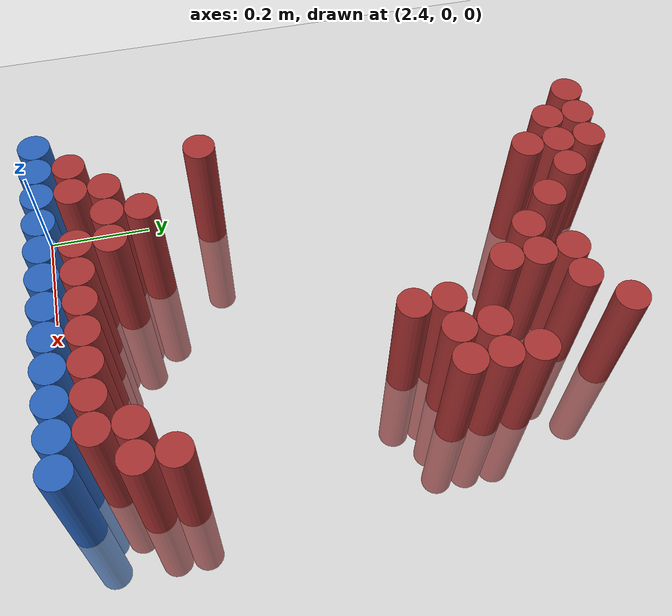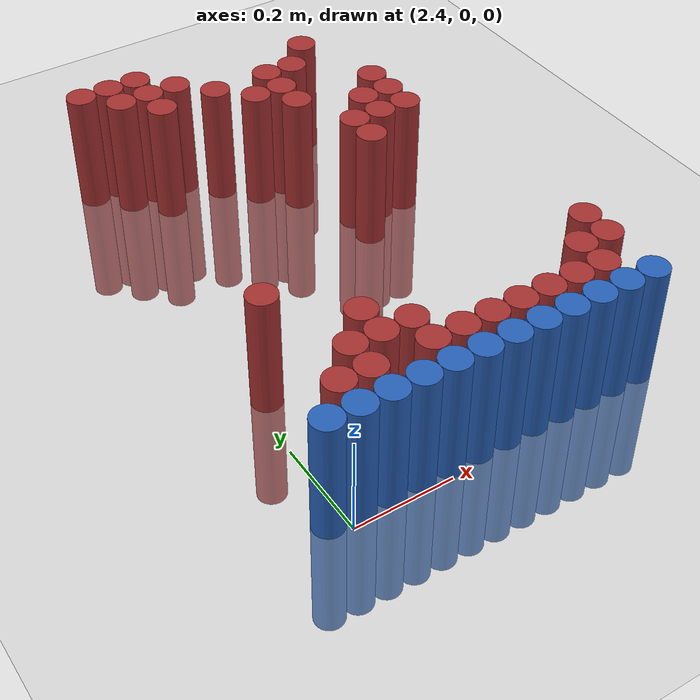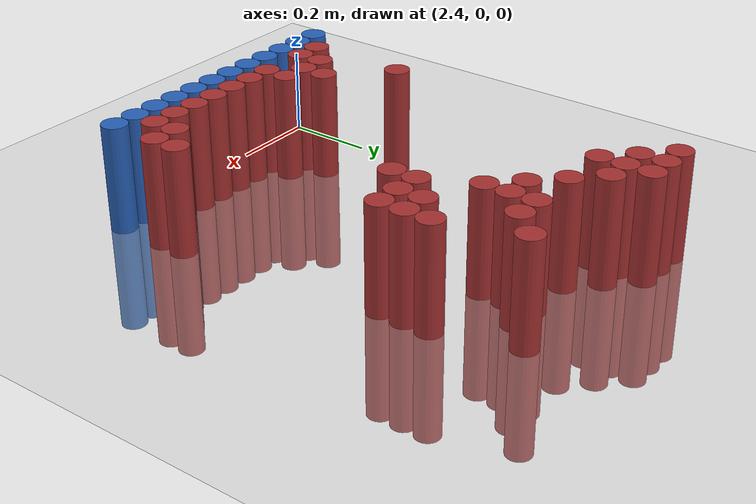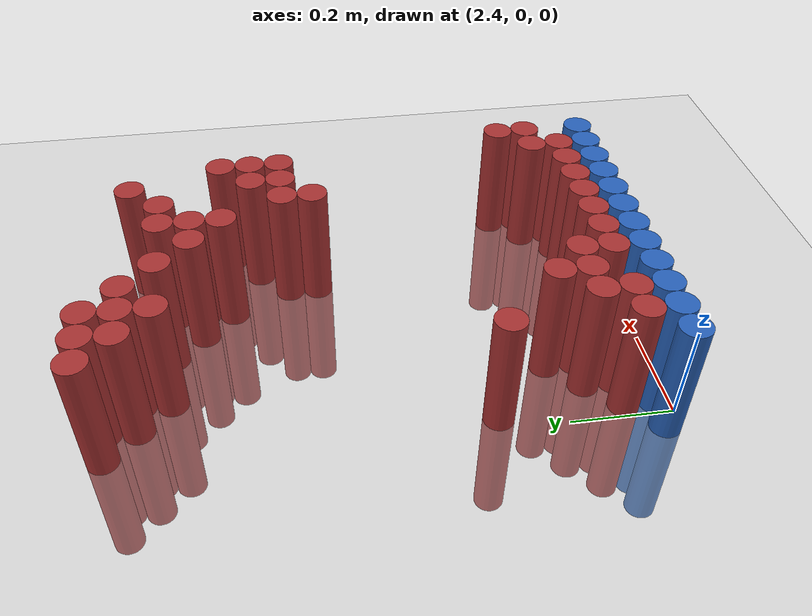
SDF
<sdf version="1.6">
 <world name="default">
  <model name="ground_plane">
   <static>1</static>
   <link name="link">
    <collision name="collision">
     <geometry><plane><normal>0 0 1</normal><size>100 100</size></plane></geometry>
     <surface><friction><ode><mu>100</mu><mu2>50</mu2></ode></friction></surface>
    </collision>
    <visual name="visual">
     <cast_shadows>0</cast_shadows>
     <geometry><plane><normal>0 0 1</normal><size>100 100</size></plane></geometry>
     <material>
      <script><uri>file://media/materials/scripts/gazebo.material</uri><name>Gazebo/Grey</name></script>
     </material>
    </visual>
   </link>
  </model>
  <model name="unit_cylinder_221">
   <static>1</static>
   <pose>2.430000 1.050000 0.000000 0.000000 0.000000 0.000000</pose>
   <link name="link">
    <inertial>
     <mass>1</mass>
     <inertia><ixx>0.145833</ixx><ixy>0</ixy><ixz>0</ixz><iyy>0.145833</iyy><iyz>0</iyz><izz>0.125</izz></inertia>
    </inertial>
    <collision name="collision">
     <geometry><cylinder><radius>0.030000</radius><length>0.5</length></cylinder></geometry>
    </collision>
    <visual name="visual">
     <geometry><cylinder><radius>0.030000</radius><length>0.5</length></cylinder></geometry>
     <material>
      <ambient>0.648000 0.192000 0.192000 1</ambient>
      <diffuse>0.648000 0.192000 0.192000 1</diffuse>
     </material>
     <material>
      <script><name>Gazebo/Grey</name><uri>file://media/materials/scripts/gazebo.material</uri></script>
     </material>
    </visual>
   </link>
  </model>
  <model name="unit_cylinder_222">
   <static>1</static>
   <pose>2.490000 1.050000 0.000000 0.000000 0.000000 0.000000</pose>
   <link name="link">
    <inertial>
     <mass>1</mass>
     <inertia><ixx>0.145833</ixx><ixy>0</ixy><ixz>0</ixz><iyy>0.145833</iyy><iyz>0</iyz><izz>0.125</izz></inertia>
    </inertial>
    <collision name="collision">
     <geometry><cylinder><radius>0.030000</radius><length>0.5</length></cylinder></geometry>
    </collision>
    <visual name="visual">
     <geometry><cylinder><radius>0.030000</radius><length>0.5</length></cylinder></geometry>
     <material>
      <ambient>0.648000 0.192000 0.192000 1</ambient>
      <diffuse>0.648000 0.192000 0.192000 1</diffuse>
     </material>
     <material>
      <script><name>Gazebo/Grey</name><uri>file://media/materials/scripts/gazebo.material</uri></script>
     </material>
    </visual>
   </link>
  </model>
  <model name="unit_cylinder_223">
   <static>1</static>
   <pose>2.550000 1.050000 0.000000 0.000000 0.000000 0.000000</pose>
   <link name="link">
    <inertial>
     <mass>1</mass>
     <inertia><ixx>0.145833</ixx><ixy>0</ixy><ixz>0</ixz><iyy>0.145833</iyy><iyz>0</iyz><izz>0.125</izz></inertia>
    </inertial>
    <collision name="collision">
     <geometry><cylinder><radius>0.030000</radius><length>0.5</length></cylinder></geometry>
    </collision>
    <visual name="visual">
     <geometry><cylinder><radius>0.030000</radius><length>0.5</length></cylinder></geometry>
     <material>
      <ambient>0.648000 0.192000 0.192000 1</ambient>
      <diffuse>0.648000 0.192000 0.192000 1</diffuse>
     </material>
     <material>
      <script><name>Gazebo/Grey</name><uri>file://media/materials/scripts/gazebo.material</uri></script>
     </material>
    </visual>
   </link>
  </model>
  <model name="unit_cylinder_229">
   <static>1</static>
   <pose>2.490000 0.990000 0.000000 0.000000 0.000000 0.000000</pose>
   <link name="link">
    <inertial>
     <mass>1</mass>
     <inertia><ixx>0.145833</ixx><ixy>0</ixy><ixz>0</ixz><iyy>0.145833</iyy><iyz>0</iyz><izz>0.125</izz></inertia>
    </inertial>
    <collision name="collision">
     <geometry><cylinder><radius>0.030000</radius><length>0.5</length></cylinder></geometry>
    </collision>
    <visual name="visual">
     <geometry><cylinder><radius>0.030000</radius><length>0.5</length></cylinder></geometry>
     <material>
      <ambient>0.648000 0.192000 0.192000 1</ambient>
      <diffuse>0.648000 0.192000 0.192000 1</diffuse>
     </material>
     <material>
      <script><name>Gazebo/Grey</name><uri>file://media/materials/scripts/gazebo.material</uri></script>
     </material>
    </visual>
   </link>
  </model>
  <model name="unit_cylinder_230">
   <static>1</static>
   <pose>2.550000 0.990000 0.000000 0.000000 0.000000 0.000000</pose>
   <link name="link">
    <inertial>
     <mass>1</mass>
     <inertia><ixx>0.145833</ixx><ixy>0</ixy><ixz>0</ixz><iyy>0.145833</iyy><iyz>0</iyz><izz>0.125</izz></inertia>
    </inertial>
    <collision name="collision">
     <geometry><cylinder><radius>0.030000</radius><length>0.5</length></cylinder></geometry>
    </collision>
    <visual name="visual">
     <geometry><cylinder><radius>0.030000</radius><length>0.5</length></cylinder></geometry>
     <material>
      <ambient>0.648000 0.192000 0.192000 1</ambient>
      <diffuse>0.648000 0.192000 0.192000 1</diffuse>
     </material>
     <material>
      <script><name>Gazebo/Grey</name><uri>file://media/materials/scripts/gazebo.material</uri></script>
     </material>
    </visual>
   </link>
  </model>
  <model name="unit_cylinder_231">
   <static>1</static>
   <pose>2.610000 0.990000 0.000000 0.000000 0.000000 0.000000</pose>
   <link name="link">
    <inertial>
     <mass>1</mass>
     <inertia><ixx>0.145833</ixx><ixy>0</ixy><ixz>0</ixz><iyy>0.145833</iyy><iyz>0</iyz><izz>0.125</izz></inertia>
    </inertial>
    <collision name="collision">
     <geometry><cylinder><radius>0.030000</radius><length>0.5</length></cylinder></geometry>
    </collision>
    <visual name="visual">
     <geometry><cylinder><radius>0.030000</radius><length>0.5</length></cylinder></geometry>
     <material>
      <ambient>0.648000 0.192000 0.192000 1</ambient>
      <diffuse>0.648000 0.192000 0.192000 1</diffuse>
     </material>
     <material>
      <script><name>Gazebo/Grey</name><uri>file://media/materials/scripts/gazebo.material</uri></script>
     </material>
    </visual>
   </link>
  </model>
  <model name="unit_cylinder_232">
   <static>1</static>
   <pose>2.910000 0.990000 0.000000 0.000000 0.000000 0.000000</pose>
   <link name="link">
    <inertial>
     <mass>1</mass>
     <inertia><ixx>0.145833</ixx><ixy>0</ixy><ixz>0</ixz><iyy>0.145833</iyy><iyz>0</iyz><izz>0.125</izz></inertia>
    </inertial>
    <collision name="collision">
     <geometry><cylinder><radius>0.030000</radius><length>0.5</length></cylinder></geometry>
    </collision>
    <visual name="visual">
     <geometry><cylinder><radius>0.030000</radius><length>0.5</length></cylinder></geometry>
     <material>
      <ambient>0.648000 0.192000 0.192000 1</ambient>
      <diffuse>0.648000 0.192000 0.192000 1</diffuse>
     </material>
     <material>
      <script><name>Gazebo/Grey</name><uri>file://media/materials/scripts/gazebo.material</uri></script>
     </material>
    </visual>
   </link>
  </model>
  <model name="unit_cylinder_239">
   <static>1</static>
   <pose>2.550000 0.930000 0.000000 0.000000 0.000000 0.000000</pose>
   <link name="link">
    <inertial>
     <mass>1</mass>
     <inertia><ixx>0.145833</ixx><ixy>0</ixy><ixz>0</ixz><iyy>0.145833</iyy><iyz>0</iyz><izz>0.125</izz></inertia>
    </inertial>
    <collision name="collision">
     <geometry><cylinder><radius>0.030000</radius><length>0.5</length></cylinder></geometry>
    </collision>
    <visual name="visual">
     <geometry><cylinder><radius>0.030000</radius><length>0.5</length></cylinder></geometry>
     <material>
      <ambient>0.648000 0.192000 0.192000 1</ambient>
      <diffuse>0.648000 0.192000 0.192000 1</diffuse>
     </material>
     <material>
      <script><name>Gazebo/Grey</name><uri>file://media/materials/scripts/gazebo.material</uri></script>
     </material>
    </visual>
   </link>
  </model>
  <model name="unit_cylinder_240">
   <static>1</static>
   <pose>2.670000 0.930000 0.000000 0.000000 0.000000 0.000000</pose>
   <link name="link">
    <inertial>
     <mass>1</mass>
     <inertia><ixx>0.145833</ixx><ixy>0</ixy><ixz>0</ixz><iyy>0.145833</iyy><iyz>0</iyz><izz>0.125</izz></inertia>
    </inertial>
    <collision name="collision">
     <geometry><cylinder><radius>0.030000</radius><length>0.5</length></cylinder></geometry>
    </collision>
    <visual name="visual">
     <geometry><cylinder><radius>0.030000</radius><length>0.5</length></cylinder></geometry>
     <material>
      <ambient>0.648000 0.192000 0.192000 1</ambient>
      <diffuse>0.648000 0.192000 0.192000 1</diffuse>
     </material>
     <material>
      <script><name>Gazebo/Grey</name><uri>file://media/materials/scripts/gazebo.material</uri></script>
     </material>
    </visual>
   </link>
  </model>
  <model name="unit_cylinder_241">
   <static>1</static>
   <pose>2.790000 0.930000 0.000000 0.000000 0.000000 0.000000</pose>
   <link name="link">
    <inertial>
     <mass>1</mass>
     <inertia><ixx>0.145833</ixx><ixy>0</ixy><ixz>0</ixz><iyy>0.145833</iyy><iyz>0</iyz><izz>0.125</izz></inertia>
    </inertial>
    <collision name="collision">
     <geometry><cylinder><radius>0.030000</radius><length>0.5</length></cylinder></geometry>
    </collision>
    <visual name="visual">
     <geometry><cylinder><radius>0.030000</radius><length>0.5</length></cylinder></geometry>
     <material>
      <ambient>0.648000 0.192000 0.192000 1</ambient>
      <diffuse>0.648000 0.192000 0.192000 1</diffuse>
     </material>
     <material>
      <script><name>Gazebo/Grey</name><uri>file://media/materials/scripts/gazebo.material</uri></script>
     </material>
    </visual>
   </link>
  </model>
  <model name="unit_cylinder_242">
   <static>1</static>
   <pose>2.850000 0.930000 0.000000 0.000000 0.000000 0.000000</pose>
   <link name="link">
    <inertial>
     <mass>1</mass>
     <inertia><ixx>0.145833</ixx><ixy>0</ixy><ixz>0</ixz><iyy>0.145833</iyy><iyz>0</iyz><izz>0.125</izz></inertia>
    </inertial>
    <collision name="collision">
     <geometry><cylinder><radius>0.030000</radius><length>0.5</length></cylinder></geometry>
    </collision>
    <visual name="visual">
     <geometry><cylinder><radius>0.030000</radius><length>0.5</length></cylinder></geometry>
     <material>
      <ambient>0.648000 0.192000 0.192000 1</ambient>
      <diffuse>0.648000 0.192000 0.192000 1</diffuse>
     </material>
     <material>
      <script><name>Gazebo/Grey</name><uri>file://media/materials/scripts/gazebo.material</uri></script>
     </material>
    </visual>
   </link>
  </model>
  <model name="unit_cylinder_250">
   <static>1</static>
   <pose>2.730000 0.870000 0.000000 0.000000 0.000000 0.000000</pose>
   <link name="link">
    <inertial>
     <mass>1</mass>
     <inertia><ixx>0.145833</ixx><ixy>0</ixy><ixz>0</ixz><iyy>0.145833</iyy><iyz>0</iyz><izz>0.125</izz></inertia>
    </inertial>
    <collision name="collision">
     <geometry><cylinder><radius>0.030000</radius><length>0.5</length></cylinder></geometry>
    </collision>
    <visual name="visual">
     <geometry><cylinder><radius>0.030000</radius><length>0.5</length></cylinder></geometry>
     <material>
      <ambient>0.648000 0.192000 0.192000 1</ambient>
      <diffuse>0.648000 0.192000 0.192000 1</diffuse>
     </material>
     <material>
      <script><name>Gazebo/Grey</name><uri>file://media/materials/scripts/gazebo.material</uri></script>
     </material>
    </visual>
   </link>
  </model>
  <model name="unit_cylinder_251">
   <static>1</static>
   <pose>2.790000 0.870000 0.000000 0.000000 0.000000 0.000000</pose>
   <link name="link">
    <inertial>
     <mass>1</mass>
     <inertia><ixx>0.145833</ixx><ixy>0</ixy><ixz>0</ixz><iyy>0.145833</iyy><iyz>0</iyz><izz>0.125</izz></inertia>
    </inertial>
    <collision name="collision">
     <geometry><cylinder><radius>0.030000</radius><length>0.5</length></cylinder></geometry>
    </collision>
    <visual name="visual">
     <geometry><cylinder><radius>0.030000</radius><length>0.5</length></cylinder></geometry>
     <material>
      <ambient>0.648000 0.192000 0.192000 1</ambient>
      <diffuse>0.648000 0.192000 0.192000 1</diffuse>
     </material>
     <material>
      <script><name>Gazebo/Grey</name><uri>file://media/materials/scripts/gazebo.material</uri></script>
     </material>
    </visual>
   </link>
  </model>
  <model name="unit_cylinder_255">
   <static>1</static>
   <pose>2.790000 0.810000 0.000000 0.000000 0.000000 0.000000</pose>
   <link name="link">
    <inertial>
     <mass>1</mass>
     <inertia><ixx>0.145833</ixx><ixy>0</ixy><ixz>0</ixz><iyy>0.145833</iyy><iyz>0</iyz><izz>0.125</izz></inertia>
    </inertial>
    <collision name="collision">
     <geometry><cylinder><radius>0.030000</radius><length>0.5</length></cylinder></geometry>
    </collision>
    <visual name="visual">
     <geometry><cylinder><radius>0.030000</radius><length>0.5</length></cylinder></geometry>
     <material>
      <ambient>0.648000 0.192000 0.192000 1</ambient>
      <diffuse>0.648000 0.192000 0.192000 1</diffuse>
     </material>
     <material>
      <script><name>Gazebo/Grey</name><uri>file://media/materials/scripts/gazebo.material</uri></script>
     </material>
    </visual>
   </link>
  </model>
  <model name="unit_cylinder_256">
   <static>1</static>
   <pose>2.970000 0.810000 0.000000 0.000000 0.000000 0.000000</pose>
   <link name="link">
    <inertial>
     <mass>1</mass>
     <inertia><ixx>0.145833</ixx><ixy>0</ixy><ixz>0</ixz><iyy>0.145833</iyy><iyz>0</iyz><izz>0.125</izz></inertia>
    </inertial>
    <collision name="collision">
     <geometry><cylinder><radius>0.030000</radius><length>0.5</length></cylinder></geometry>
    </collision>
    <visual name="visual">
     <geometry><cylinder><radius>0.030000</radius><length>0.5</length></cylinder></geometry>
     <material>
      <ambient>0.648000 0.192000 0.192000 1</ambient>
      <diffuse>0.648000 0.192000 0.192000 1</diffuse>
     </material>
     <material>
      <script><name>Gazebo/Grey</name><uri>file://media/materials/scripts/gazebo.material</uri></script>
     </material>
    </visual>
   </link>
  </model>
  <model name="unit_cylinder_261">
   <static>1</static>
   <pose>2.910000 0.750000 0.000000 0.000000 0.000000 0.000000</pose>
   <link name="link">
    <inertial>
     <mass>1</mass>
     <inertia><ixx>0.145833</ixx><ixy>0</ixy><ixz>0</ixz><iyy>0.145833</iyy><iyz>0</iyz><izz>0.125</izz></inertia>
    </inertial>
    <collision name="collision">
     <geometry><cylinder><radius>0.030000</radius><length>0.5</length></cylinder></geometry>
    </collision>
    <visual name="visual">
     <geometry><cylinder><radius>0.030000</radius><length>0.5</length></cylinder></geometry>
     <material>
      <ambient>0.648000 0.192000 0.192000 1</ambient>
      <diffuse>0.648000 0.192000 0.192000 1</diffuse>
     </material>
     <material>
      <script><name>Gazebo/Grey</name><uri>file://media/materials/scripts/gazebo.material</uri></script>
     </material>
    </visual>
   </link>
  </model>
  <model name="unit_cylinder_262">
   <static>1</static>
   <pose>2.970000 0.750000 0.000000 0.000000 0.000000 0.000000</pose>
   <link name="link">
    <inertial>
     <mass>1</mass>
     <inertia><ixx>0.145833</ixx><ixy>0</ixy><ixz>0</ixz><iyy>0.145833</iyy><iyz>0</iyz><izz>0.125</izz></inertia>
    </inertial>
    <collision name="collision">
     <geometry><cylinder><radius>0.030000</radius><length>0.5</length></cylinder></geometry>
    </collision>
    <visual name="visual">
     <geometry><cylinder><radius>0.030000</radius><length>0.5</length></cylinder></geometry>
     <material>
      <ambient>0.648000 0.192000 0.192000 1</ambient>
      <diffuse>0.648000 0.192000 0.192000 1</diffuse>
     </material>
     <material>
      <script><name>Gazebo/Grey</name><uri>file://media/materials/scripts/gazebo.material</uri></script>
     </material>
    </visual>
   </link>
  </model>
  <model name="unit_cylinder_265">
   <static>1</static>
   <pose>2.850000 0.690000 0.000000 0.000000 0.000000 0.000000</pose>
   <link name="link">
    <inertial>
     <mass>1</mass>
     <inertia><ixx>0.145833</ixx><ixy>0</ixy><ixz>0</ixz><iyy>0.145833</iyy><iyz>0</iyz><izz>0.125</izz></inertia>
    </inertial>
    <collision name="collision">
     <geometry><cylinder><radius>0.030000</radius><length>0.5</length></cylinder></geometry>
    </collision>
    <visual name="visual">
     <geometry><cylinder><radius>0.030000</radius><length>0.5</length></cylinder></geometry>
     <material>
      <ambient>0.648000 0.192000 0.192000 1</ambient>
      <diffuse>0.648000 0.192000 0.192000 1</diffuse>
     </material>
     <material>
      <script><name>Gazebo/Grey</name><uri>file://media/materials/scripts/gazebo.material</uri></script>
     </material>
    </visual>
   </link>
  </model>
  <model name="unit_cylinder_266">
   <static>1</static>
   <pose>2.910000 0.690000 0.000000 0.000000 0.000000 0.000000</pose>
   <link name="link">
    <inertial>
     <mass>1</mass>
     <inertia><ixx>0.145833</ixx><ixy>0</ixy><ixz>0</ixz><iyy>0.145833</iyy><iyz>0</iyz><izz>0.125</izz></inertia>
    </inertial>
    <collision name="collision">
     <geometry><cylinder><radius>0.030000</radius><length>0.5</length></cylinder></geometry>
    </collision>
    <visual name="visual">
     <geometry><cylinder><radius>0.030000</radius><length>0.5</length></cylinder></geometry>
     <material>
      <ambient>0.648000 0.192000 0.192000 1</ambient>
      <diffuse>0.648000 0.192000 0.192000 1</diffuse>
     </material>
     <material>
      <script><name>Gazebo/Grey</name><uri>file://media/materials/scripts/gazebo.material</uri></script>
     </material>
    </visual>
   </link>
  </model>
  <model name="unit_cylinder_267">
   <static>1</static>
   <pose>2.970000 0.690000 0.000000 0.000000 0.000000 0.000000</pose>
   <link name="link">
    <inertial>
     <mass>1</mass>
     <inertia><ixx>0.145833</ixx><ixy>0</ixy><ixz>0</ixz><iyy>0.145833</iyy><iyz>0</iyz><izz>0.125</izz></inertia>
    </inertial>
    <collision name="collision">
     <geometry><cylinder><radius>0.030000</radius><length>0.5</length></cylinder></geometry>
    </collision>
    <visual name="visual">
     <geometry><cylinder><radius>0.030000</radius><length>0.5</length></cylinder></geometry>
     <material>
      <ambient>0.648000 0.192000 0.192000 1</ambient>
      <diffuse>0.648000 0.192000 0.192000 1</diffuse>
     </material>
     <material>
      <script><name>Gazebo/Grey</name><uri>file://media/materials/scripts/gazebo.material</uri></script>
     </material>
    </visual>
   </link>
  </model>
  <model name="unit_cylinder_269">
   <static>1</static>
   <pose>2.850000 0.630000 0.000000 0.000000 0.000000 0.000000</pose>
   <link name="link">
    <inertial>
     <mass>1</mass>
     <inertia><ixx>0.145833</ixx><ixy>0</ixy><ixz>0</ixz><iyy>0.145833</iyy><iyz>0</iyz><izz>0.125</izz></inertia>
    </inertial>
    <collision name="collision">
     <geometry><cylinder><radius>0.030000</radius><length>0.5</length></cylinder></geometry>
    </collision>
    <visual name="visual">
     <geometry><cylinder><radius>0.030000</radius><length>0.5</length></cylinder></geometry>
     <material>
      <ambient>0.648000 0.192000 0.192000 1</ambient>
      <diffuse>0.648000 0.192000 0.192000 1</diffuse>
     </material>
     <material>
      <script><name>Gazebo/Grey</name><uri>file://media/materials/scripts/gazebo.material</uri></script>
     </material>
    </visual>
   </link>
  </model>
  <model name="unit_cylinder_283">
   <static>1</static>
   <pose>2.430000 0.330000 0.000000 0.000000 0.000000 0.000000</pose>
   <link name="link">
    <inertial>
     <mass>1</mass>
     <inertia><ixx>0.145833</ixx><ixy>0</ixy><ixz>0</ixz><iyy>0.145833</iyy><iyz>0</iyz><izz>0.125</izz></inertia>
    </inertial>
    <collision name="collision">
     <geometry><cylinder><radius>0.030000</radius><length>0.5</length></cylinder></geometry>
    </collision>
    <visual name="visual">
     <geometry><cylinder><radius>0.030000</radius><length>0.5</length></cylinder></geometry>
     <material>
      <ambient>0.648000 0.192000 0.192000 1</ambient>
      <diffuse>0.648000 0.192000 0.192000 1</diffuse>
     </material>
     <material>
      <script><name>Gazebo/Grey</name><uri>file://media/materials/scripts/gazebo.material</uri></script>
     </material>
    </visual>
   </link>
  </model>
  <model name="unit_cylinder_288">
   <static>1</static>
   <pose>2.550000 0.210000 0.000000 0.000000 0.000000 0.000000</pose>
   <link name="link">
    <inertial>
     <mass>1</mass>
     <inertia><ixx>0.145833</ixx><ixy>0</ixy><ixz>0</ixz><iyy>0.145833</iyy><iyz>0</iyz><izz>0.125</izz></inertia>
    </inertial>
    <collision name="collision">
     <geometry><cylinder><radius>0.030000</radius><length>0.5</length></cylinder></geometry>
    </collision>
    <visual name="visual">
     <geometry><cylinder><radius>0.030000</radius><length>0.5</length></cylinder></geometry>
     <material>
      <ambient>0.648000 0.192000 0.192000 1</ambient>
      <diffuse>0.648000 0.192000 0.192000 1</diffuse>
     </material>
     <material>
      <script><name>Gazebo/Grey</name><uri>file://media/materials/scripts/gazebo.material</uri></script>
     </material>
    </visual>
   </link>
  </model>
  <model name="unit_cylinder_289">
   <static>1</static>
   <pose>3.030000 0.210000 0.000000 0.000000 0.000000 0.000000</pose>
   <link name="link">
    <inertial>
     <mass>1</mass>
     <inertia><ixx>0.145833</ixx><ixy>0</ixy><ixz>0</ixz><iyy>0.145833</iyy><iyz>0</iyz><izz>0.125</izz></inertia>
    </inertial>
    <collision name="collision">
     <geometry><cylinder><radius>0.030000</radius><length>0.5</length></cylinder></geometry>
    </collision>
    <visual name="visual">
     <geometry><cylinder><radius>0.030000</radius><length>0.5</length></cylinder></geometry>
     <material>
      <ambient>0.648000 0.192000 0.192000 1</ambient>
      <diffuse>0.648000 0.192000 0.192000 1</diffuse>
     </material>
     <material>
      <script><name>Gazebo/Grey</name><uri>file://media/materials/scripts/gazebo.material</uri></script>
     </material>
    </visual>
   </link>
  </model>
  <model name="unit_cylinder_293">
   <static>1</static>
   <pose>2.490000 0.150000 0.000000 0.000000 0.000000 0.000000</pose>
   <link name="link">
    <inertial>
     <mass>1</mass>
     <inertia><ixx>0.145833</ixx><ixy>0</ixy><ixz>0</ixz><iyy>0.145833</iyy><iyz>0</iyz><izz>0.125</izz></inertia>
    </inertial>
    <collision name="collision">
     <geometry><cylinder><radius>0.030000</radius><length>0.5</length></cylinder></geometry>
    </collision>
    <visual name="visual">
     <geometry><cylinder><radius>0.030000</radius><length>0.5</length></cylinder></geometry>
     <material>
      <ambient>0.648000 0.192000 0.192000 1</ambient>
      <diffuse>0.648000 0.192000 0.192000 1</diffuse>
     </material>
     <material>
      <script><name>Gazebo/Grey</name><uri>file://media/materials/scripts/gazebo.material</uri></script>
     </material>
    </visual>
   </link>
  </model>
  <model name="unit_cylinder_294">
   <static>1</static>
   <pose>2.550000 0.150000 0.000000 0.000000 0.000000 0.000000</pose>
   <link name="link">
    <inertial>
     <mass>1</mass>
     <inertia><ixx>0.145833</ixx><ixy>0</ixy><ixz>0</ixz><iyy>0.145833</iyy><iyz>0</iyz><izz>0.125</izz></inertia>
    </inertial>
    <collision name="collision">
     <geometry><cylinder><radius>0.030000</radius><length>0.5</length></cylinder></geometry>
    </collision>
    <visual name="visual">
     <geometry><cylinder><radius>0.030000</radius><length>0.5</length></cylinder></geometry>
     <material>
      <ambient>0.648000 0.192000 0.192000 1</ambient>
      <diffuse>0.648000 0.192000 0.192000 1</diffuse>
     </material>
     <material>
      <script><name>Gazebo/Grey</name><uri>file://media/materials/scripts/gazebo.material</uri></script>
     </material>
    </visual>
   </link>
  </model>
  <model name="unit_cylinder_295">
   <static>1</static>
   <pose>2.610000 0.150000 0.000000 0.000000 0.000000 0.000000</pose>
   <link name="link">
    <inertial>
     <mass>1</mass>
     <inertia><ixx>0.145833</ixx><ixy>0</ixy><ixz>0</ixz><iyy>0.145833</iyy><iyz>0</iyz><izz>0.125</izz></inertia>
    </inertial>
    <collision name="collision">
     <geometry><cylinder><radius>0.030000</radius><length>0.5</length></cylinder></geometry>
    </collision>
    <visual name="visual">
     <geometry><cylinder><radius>0.030000</radius><length>0.5</length></cylinder></geometry>
     <material>
      <ambient>0.648000 0.192000 0.192000 1</ambient>
      <diffuse>0.648000 0.192000 0.192000 1</diffuse>
     </material>
     <material>
      <script><name>Gazebo/Grey</name><uri>file://media/materials/scripts/gazebo.material</uri></script>
     </material>
    </visual>
   </link>
  </model>
  <model name="unit_cylinder_296">
   <static>1</static>
   <pose>2.970000 0.150000 0.000000 0.000000 0.000000 0.000000</pose>
   <link name="link">
    <inertial>
     <mass>1</mass>
     <inertia><ixx>0.145833</ixx><ixy>0</ixy><ixz>0</ixz><iyy>0.145833</iyy><iyz>0</iyz><izz>0.125</izz></inertia>
    </inertial>
    <collision name="collision">
     <geometry><cylinder><radius>0.030000</radius><length>0.5</length></cylinder></geometry>
    </collision>
    <visual name="visual">
     <geometry><cylinder><radius>0.030000</radius><length>0.5</length></cylinder></geometry>
     <material>
      <ambient>0.648000 0.192000 0.192000 1</ambient>
      <diffuse>0.648000 0.192000 0.192000 1</diffuse>
     </material>
     <material>
      <script><name>Gazebo/Grey</name><uri>file://media/materials/scripts/gazebo.material</uri></script>
     </material>
    </visual>
   </link>
  </model>
  <model name="unit_cylinder_297">
   <static>1</static>
   <pose>3.030000 0.150000 0.000000 0.000000 0.000000 0.000000</pose>
   <link name="link">
    <inertial>
     <mass>1</mass>
     <inertia><ixx>0.145833</ixx><ixy>0</ixy><ixz>0</ixz><iyy>0.145833</iyy><iyz>0</iyz><izz>0.125</izz></inertia>
    </inertial>
    <collision name="collision">
     <geometry><cylinder><radius>0.030000</radius><length>0.5</length></cylinder></geometry>
    </collision>
    <visual name="visual">
     <geometry><cylinder><radius>0.030000</radius><length>0.5</length></cylinder></geometry>
     <material>
      <ambient>0.648000 0.192000 0.192000 1</ambient>
      <diffuse>0.648000 0.192000 0.192000 1</diffuse>
     </material>
     <material>
      <script><name>Gazebo/Grey</name><uri>file://media/materials/scripts/gazebo.material</uri></script>
     </material>
    </visual>
   </link>
  </model>
  <model name="unit_cylinder_305">
   <static>1</static>
   <pose>2.430000 0.090000 0.000000 0.000000 0.000000 0.000000</pose>
   <link name="link">
    <inertial>
     <mass>1</mass>
     <inertia><ixx>0.145833</ixx><ixy>0</ixy><ixz>0</ixz><iyy>0.145833</iyy><iyz>0</iyz><izz>0.125</izz></inertia>
    </inertial>
    <collision name="collision">
     <geometry><cylinder><radius>0.030000</radius><length>0.5</length></cylinder></geometry>
    </collision>
    <visual name="visual">
     <geometry><cylinder><radius>0.030000</radius><length>0.5</length></cylinder></geometry>
     <material>
      <ambient>0.648000 0.192000 0.192000 1</ambient>
      <diffuse>0.648000 0.192000 0.192000 1</diffuse>
     </material>
     <material>
      <script><name>Gazebo/Grey</name><uri>file://media/materials/scripts/gazebo.material</uri></script>
     </material>
    </visual>
   </link>
  </model>
  <model name="unit_cylinder_306">
   <static>1</static>
   <pose>2.490000 0.090000 0.000000 0.000000 0.000000 0.000000</pose>
   <link name="link">
    <inertial>
     <mass>1</mass>
     <inertia><ixx>0.145833</ixx><ixy>0</ixy><ixz>0</ixz><iyy>0.145833</iyy><iyz>0</iyz><izz>0.125</izz></inertia>
    </inertial>
    <collision name="collision">
     <geometry><cylinder><radius>0.030000</radius><length>0.5</length></cylinder></geometry>
    </collision>
    <visual name="visual">
     <geometry><cylinder><radius>0.030000</radius><length>0.5</length></cylinder></geometry>
     <material>
      <ambient>0.648000 0.192000 0.192000 1</ambient>
      <diffuse>0.648000 0.192000 0.192000 1</diffuse>
     </material>
     <material>
      <script><name>Gazebo/Grey</name><uri>file://media/materials/scripts/gazebo.material</uri></script>
     </material>
    </visual>
   </link>
  </model>
  <model name="unit_cylinder_307">
   <static>1</static>
   <pose>2.610000 0.090000 0.000000 0.000000 0.000000 0.000000</pose>
   <link name="link">
    <inertial>
     <mass>1</mass>
     <inertia><ixx>0.145833</ixx><ixy>0</ixy><ixz>0</ixz><iyy>0.145833</iyy><iyz>0</iyz><izz>0.125</izz></inertia>
    </inertial>
    <collision name="collision">
     <geometry><cylinder><radius>0.030000</radius><length>0.5</length></cylinder></geometry>
    </collision>
    <visual name="visual">
     <geometry><cylinder><radius>0.030000</radius><length>0.5</length></cylinder></geometry>
     <material>
      <ambient>0.648000 0.192000 0.192000 1</ambient>
      <diffuse>0.648000 0.192000 0.192000 1</diffuse>
     </material>
     <material>
      <script><name>Gazebo/Grey</name><uri>file://media/materials/scripts/gazebo.material</uri></script>
     </material>
    </visual>
   </link>
  </model>
  <model name="unit_cylinder_308">
   <static>1</static>
   <pose>2.670000 0.090000 0.000000 0.000000 0.000000 0.000000</pose>
   <link name="link">
    <inertial>
     <mass>1</mass>
     <inertia><ixx>0.145833</ixx><ixy>0</ixy><ixz>0</ixz><iyy>0.145833</iyy><iyz>0</iyz><izz>0.125</izz></inertia>
    </inertial>
    <collision name="collision">
     <geometry><cylinder><radius>0.030000</radius><length>0.5</length></cylinder></geometry>
    </collision>
    <visual name="visual">
     <geometry><cylinder><radius>0.030000</radius><length>0.5</length></cylinder></geometry>
     <material>
      <ambient>0.648000 0.192000 0.192000 1</ambient>
      <diffuse>0.648000 0.192000 0.192000 1</diffuse>
     </material>
     <material>
      <script><name>Gazebo/Grey</name><uri>file://media/materials/scripts/gazebo.material</uri></script>
     </material>
    </visual>
   </link>
  </model>
  <model name="unit_cylinder_309">
   <static>1</static>
   <pose>2.730000 0.090000 0.000000 0.000000 0.000000 0.000000</pose>
   <link name="link">
    <inertial>
     <mass>1</mass>
     <inertia><ixx>0.145833</ixx><ixy>0</ixy><ixz>0</ixz><iyy>0.145833</iyy><iyz>0</iyz><izz>0.125</izz></inertia>
    </inertial>
    <collision name="collision">
     <geometry><cylinder><radius>0.030000</radius><length>0.5</length></cylinder></geometry>
    </collision>
    <visual name="visual">
     <geometry><cylinder><radius>0.030000</radius><length>0.5</length></cylinder></geometry>
     <material>
      <ambient>0.648000 0.192000 0.192000 1</ambient>
      <diffuse>0.648000 0.192000 0.192000 1</diffuse>
     </material>
     <material>
      <script><name>Gazebo/Grey</name><uri>file://media/materials/scripts/gazebo.material</uri></script>
     </material>
    </visual>
   </link>
  </model>
  <model name="unit_cylinder_310">
   <static>1</static>
   <pose>2.790000 0.090000 0.000000 0.000000 0.000000 0.000000</pose>
   <link name="link">
    <inertial>
     <mass>1</mass>
     <inertia><ixx>0.145833</ixx><ixy>0</ixy><ixz>0</ixz><iyy>0.145833</iyy><iyz>0</iyz><izz>0.125</izz></inertia>
    </inertial>
    <collision name="collision">
     <geometry><cylinder><radius>0.030000</radius><length>0.5</length></cylinder></geometry>
    </collision>
    <visual name="visual">
     <geometry><cylinder><radius>0.030000</radius><length>0.5</length></cylinder></geometry>
     <material>
      <ambient>0.648000 0.192000 0.192000 1</ambient>
      <diffuse>0.648000 0.192000 0.192000 1</diffuse>
     </material>
     <material>
      <script><name>Gazebo/Grey</name><uri>file://media/materials/scripts/gazebo.material</uri></script>
     </material>
    </visual>
   </link>
  </model>
  <model name="unit_cylinder_311">
   <static>1</static>
   <pose>2.850000 0.090000 0.000000 0.000000 0.000000 0.000000</pose>
   <link name="link">
    <inertial>
     <mass>1</mass>
     <inertia><ixx>0.145833</ixx><ixy>0</ixy><ixz>0</ixz><iyy>0.145833</iyy><iyz>0</iyz><izz>0.125</izz></inertia>
    </inertial>
    <collision name="collision">
     <geometry><cylinder><radius>0.030000</radius><length>0.5</length></cylinder></geometry>
    </collision>
    <visual name="visual">
     <geometry><cylinder><radius>0.030000</radius><length>0.5</length></cylinder></geometry>
     <material>
      <ambient>0.648000 0.192000 0.192000 1</ambient>
      <diffuse>0.648000 0.192000 0.192000 1</diffuse>
     </material>
     <material>
      <script><name>Gazebo/Grey</name><uri>file://media/materials/scripts/gazebo.material</uri></script>
     </material>
    </visual>
   </link>
  </model>
  <model name="unit_cylinder_312">
   <static>1</static>
   <pose>2.910000 0.090000 0.000000 0.000000 0.000000 0.000000</pose>
   <link name="link">
    <inertial>
     <mass>1</mass>
     <inertia><ixx>0.145833</ixx><ixy>0</ixy><ixz>0</ixz><iyy>0.145833</iyy><iyz>0</iyz><izz>0.125</izz></inertia>
    </inertial>
    <collision name="collision">
     <geometry><cylinder><radius>0.030000</radius><length>0.5</length></cylinder></geometry>
    </collision>
    <visual name="visual">
     <geometry><cylinder><radius>0.030000</radius><length>0.5</length></cylinder></geometry>
     <material>
      <ambient>0.648000 0.192000 0.192000 1</ambient>
      <diffuse>0.648000 0.192000 0.192000 1</diffuse>
     </material>
     <material>
      <script><name>Gazebo/Grey</name><uri>file://media/materials/scripts/gazebo.material</uri></script>
     </material>
    </visual>
   </link>
  </model>
  <model name="unit_cylinder_313">
   <static>1</static>
   <pose>2.970000 0.090000 0.000000 0.000000 0.000000 0.000000</pose>
   <link name="link">
    <inertial>
     <mass>1</mass>
     <inertia><ixx>0.145833</ixx><ixy>0</ixy><ixz>0</ixz><iyy>0.145833</iyy><iyz>0</iyz><izz>0.125</izz></inertia>
    </inertial>
    <collision name="collision">
     <geometry><cylinder><radius>0.030000</radius><length>0.5</length></cylinder></geometry>
    </collision>
    <visual name="visual">
     <geometry><cylinder><radius>0.030000</radius><length>0.5</length></cylinder></geometry>
     <material>
      <ambient>0.648000 0.192000 0.192000 1</ambient>
      <diffuse>0.648000 0.192000 0.192000 1</diffuse>
     </material>
     <material>
      <script><name>Gazebo/Grey</name><uri>file://media/materials/scripts/gazebo.material</uri></script>
     </material>
    </visual>
   </link>
  </model>
  <model name="unit_cylinder_325">
   <static>1</static>
   <pose>2.370000 0.030000 0.000000 0.000000 0.000000 0.000000</pose>
   <link name="link">
    <inertial>
     <mass>1</mass>
     <inertia><ixx>0.145833</ixx><ixy>0</ixy><ixz>0</ixz><iyy>0.145833</iyy><iyz>0</iyz><izz>0.125</izz></inertia>
    </inertial>
    <collision name="collision">
     <geometry><cylinder><radius>0.030000</radius><length>0.5</length></cylinder></geometry>
    </collision>
    <visual name="visual">
     <geometry><cylinder><radius>0.030000</radius><length>0.5</length></cylinder></geometry>
     <material>
      <ambient>0.152000 0.379000 0.720000 1</ambient>
      <diffuse>0.152000 0.379000 0.720000 1</diffuse>
     </material>
     <material>
      <script><name>Gazebo/Grey</name><uri>file://media/materials/scripts/gazebo.material</uri></script>
     </material>
    </visual>
   </link>
  </model>
  <model name="unit_cylinder_326">
   <static>1</static>
   <pose>2.430000 0.030000 0.000000 0.000000 0.000000 0.000000</pose>
   <link name="link">
    <inertial>
     <mass>1</mass>
     <inertia><ixx>0.145833</ixx><ixy>0</ixy><ixz>0</ixz><iyy>0.145833</iyy><iyz>0</iyz><izz>0.125</izz></inertia>
    </inertial>
    <collision name="collision">
     <geometry><cylinder><radius>0.030000</radius><length>0.5</length></cylinder></geometry>
    </collision>
    <visual name="visual">
     <geometry><cylinder><radius>0.030000</radius><length>0.5</length></cylinder></geometry>
     <material>
      <ambient>0.152000 0.379000 0.720000 1</ambient>
      <diffuse>0.152000 0.379000 0.720000 1</diffuse>
     </material>
     <material>
      <script><name>Gazebo/Grey</name><uri>file://media/materials/scripts/gazebo.material</uri></script>
     </material>
    </visual>
   </link>
  </model>
  <model name="unit_cylinder_327">
   <static>1</static>
   <pose>2.490000 0.030000 0.000000 0.000000 0.000000 0.000000</pose>
   <link name="link">
    <inertial>
     <mass>1</mass>
     <inertia><ixx>0.145833</ixx><ixy>0</ixy><ixz>0</ixz><iyy>0.145833</iyy><iyz>0</iyz><izz>0.125</izz></inertia>
    </inertial>
    <collision name="collision">
     <geometry><cylinder><radius>0.030000</radius><length>0.5</length></cylinder></geometry>
    </collision>
    <visual name="visual">
     <geometry><cylinder><radius>0.030000</radius><length>0.5</length></cylinder></geometry>
     <material>
      <ambient>0.152000 0.379000 0.720000 1</ambient>
      <diffuse>0.152000 0.379000 0.720000 1</diffuse>
     </material>
     <material>
      <script><name>Gazebo/Grey</name><uri>file://media/materials/scripts/gazebo.material</uri></script>
     </material>
    </visual>
   </link>
  </model>
  <model name="unit_cylinder_328">
   <static>1</static>
   <pose>2.550000 0.030000 0.000000 0.000000 0.000000 0.000000</pose>
   <link name="link">
    <inertial>
     <mass>1</mass>
     <inertia><ixx>0.145833</ixx><ixy>0</ixy><ixz>0</ixz><iyy>0.145833</iyy><iyz>0</iyz><izz>0.125</izz></inertia>
    </inertial>
    <collision name="collision">
     <geometry><cylinder><radius>0.030000</radius><length>0.5</length></cylinder></geometry>
    </collision>
    <visual name="visual">
     <geometry><cylinder><radius>0.030000</radius><length>0.5</length></cylinder></geometry>
     <material>
      <ambient>0.152000 0.379000 0.720000 1</ambient>
      <diffuse>0.152000 0.379000 0.720000 1</diffuse>
     </material>
     <material>
      <script><name>Gazebo/Grey</name><uri>file://media/materials/scripts/gazebo.material</uri></script>
     </material>
    </visual>
   </link>
  </model>
  <model name="unit_cylinder_329">
   <static>1</static>
   <pose>2.610000 0.030000 0.000000 0.000000 0.000000 0.000000</pose>
   <link name="link">
    <inertial>
     <mass>1</mass>
     <inertia><ixx>0.145833</ixx><ixy>0</ixy><ixz>0</ixz><iyy>0.145833</iyy><iyz>0</iyz><izz>0.125</izz></inertia>
    </inertial>
    <collision name="collision">
     <geometry><cylinder><radius>0.030000</radius><length>0.5</length></cylinder></geometry>
    </collision>
    <visual name="visual">
     <geometry><cylinder><radius>0.030000</radius><length>0.5</length></cylinder></geometry>
     <material>
      <ambient>0.152000 0.379000 0.720000 1</ambient>
      <diffuse>0.152000 0.379000 0.720000 1</diffuse>
     </material>
     <material>
      <script><name>Gazebo/Grey</name><uri>file://media/materials/scripts/gazebo.material</uri></script>
     </material>
    </visual>
   </link>
  </model>
  <model name="unit_cylinder_330">
   <static>1</static>
   <pose>2.670000 0.030000 0.000000 0.000000 0.000000 0.000000</pose>
   <link name="link">
    <inertial>
     <mass>1</mass>
     <inertia><ixx>0.145833</ixx><ixy>0</ixy><ixz>0</ixz><iyy>0.145833</iyy><iyz>0</iyz><izz>0.125</izz></inertia>
    </inertial>
    <collision name="collision">
     <geometry><cylinder><radius>0.030000</radius><length>0.5</length></cylinder></geometry>
    </collision>
    <visual name="visual">
     <geometry><cylinder><radius>0.030000</radius><length>0.5</length></cylinder></geometry>
     <material>
      <ambient>0.152000 0.379000 0.720000 1</ambient>
      <diffuse>0.152000 0.379000 0.720000 1</diffuse>
     </material>
     <material>
      <script><name>Gazebo/Grey</name><uri>file://media/materials/scripts/gazebo.material</uri></script>
     </material>
    </visual>
   </link>
  </model>
  <model name="unit_cylinder_331">
   <static>1</static>
   <pose>2.730000 0.030000 0.000000 0.000000 0.000000 0.000000</pose>
   <link name="link">
    <inertial>
     <mass>1</mass>
     <inertia><ixx>0.145833</ixx><ixy>0</ixy><ixz>0</ixz><iyy>0.145833</iyy><iyz>0</iyz><izz>0.125</izz></inertia>
    </inertial>
    <collision name="collision">
     <geometry><cylinder><radius>0.030000</radius><length>0.5</length></cylinder></geometry>
    </collision>
    <visual name="visual">
     <geometry><cylinder><radius>0.030000</radius><length>0.5</length></cylinder></geometry>
     <material>
      <ambient>0.152000 0.379000 0.720000 1</ambient>
      <diffuse>0.152000 0.379000 0.720000 1</diffuse>
     </material>
     <material>
      <script><name>Gazebo/Grey</name><uri>file://media/materials/scripts/gazebo.material</uri></script>
     </material>
    </visual>
   </link>
  </model>
  <model name="unit_cylinder_332">
   <static>1</static>
   <pose>2.790000 0.030000 0.000000 0.000000 0.000000 0.000000</pose>
   <link name="link">
    <inertial>
     <mass>1</mass>
     <inertia><ixx>0.145833</ixx><ixy>0</ixy><ixz>0</ixz><iyy>0.145833</iyy><iyz>0</iyz><izz>0.125</izz></inertia>
    </inertial>
    <collision name="collision">
     <geometry><cylinder><radius>0.030000</radius><length>0.5</length></cylinder></geometry>
    </collision>
    <visual name="visual">
     <geometry><cylinder><radius>0.030000</radius><length>0.5</length></cylinder></geometry>
     <material>
      <ambient>0.152000 0.379000 0.720000 1</ambient>
      <diffuse>0.152000 0.379000 0.720000 1</diffuse>
     </material>
     <material>
      <script><name>Gazebo/Grey</name><uri>file://media/materials/scripts/gazebo.material</uri></script>
     </material>
    </visual>
   </link>
  </model>
  <model name="unit_cylinder_333">
   <static>1</static>
   <pose>2.850000 0.030000 0.000000 0.000000 0.000000 0.000000</pose>
   <link name="link">
    <inertial>
     <mass>1</mass>
     <inertia><ixx>0.145833</ixx><ixy>0</ixy><ixz>0</ixz><iyy>0.145833</iyy><iyz>0</iyz><izz>0.125</izz></inertia>
    </inertial>
    <collision name="collision">
     <geometry><cylinder><radius>0.030000</radius><length>0.5</length></cylinder></geometry>
    </collision>
    <visual name="visual">
     <geometry><cylinder><radius>0.030000</radius><length>0.5</length></cylinder></geometry>
     <material>
      <ambient>0.152000 0.379000 0.720000 1</ambient>
      <diffuse>0.152000 0.379000 0.720000 1</diffuse>
     </material>
     <material>
      <script><name>Gazebo/Grey</name><uri>file://media/materials/scripts/gazebo.material</uri></script>
     </material>
    </visual>
   </link>
  </model>
  <model name="unit_cylinder_334">
   <static>1</static>
   <pose>2.910000 0.030000 0.000000 0.000000 0.000000 0.000000</pose>
   <link name="link">
    <inertial>
     <mass>1</mass>
     <inertia><ixx>0.145833</ixx><ixy>0</ixy><ixz>0</ixz><iyy>0.145833</iyy><iyz>0</iyz><izz>0.125</izz></inertia>
    </inertial>
    <collision name="collision">
     <geometry><cylinder><radius>0.030000</radius><length>0.5</length></cylinder></geometry>
    </collision>
    <visual name="visual">
     <geometry><cylinder><radius>0.030000</radius><length>0.5</length></cylinder></geometry>
     <material>
      <ambient>0.152000 0.379000 0.720000 1</ambient>
      <diffuse>0.152000 0.379000 0.720000 1</diffuse>
     </material>
     <material>
      <script><name>Gazebo/Grey</name><uri>file://media/materials/scripts/gazebo.material</uri></script>
     </material>
    </visual>
   </link>
  </model>
  <model name="unit_cylinder_335">
   <static>1</static>
   <pose>2.970000 0.030000 0.000000 0.000000 0.000000 0.000000</pose>
   <link name="link">
    <inertial>
     <mass>1</mass>
     <inertia><ixx>0.145833</ixx><ixy>0</ixy><ixz>0</ixz><iyy>0.145833</iyy><iyz>0</iyz><izz>0.125</izz></inertia>
    </inertial>
    <collision name="collision">
     <geometry><cylinder><radius>0.030000</radius><length>0.5</length></cylinder></geometry>
    </collision>
    <visual name="visual">
     <geometry><cylinder><radius>0.030000</radius><length>0.5</length></cylinder></geometry>
     <material>
      <ambient>0.152000 0.379000 0.720000 1</ambient>
      <diffuse>0.152000 0.379000 0.720000 1</diffuse>
     </material>
     <material>
      <script><name>Gazebo/Grey</name><uri>file://media/materials/scripts/gazebo.material</uri></script>
     </material>
    </visual>
   </link>
  </model>
  <model name="unit_cylinder_336">
   <static>1</static>
   <pose>3.030000 0.030000 0.000000 0.000000 0.000000 0.000000</pose>
   <link name="link">
    <inertial>
     <mass>1</mass>
     <inertia><ixx>0.145833</ixx><ixy>0</ixy><ixz>0</ixz><iyy>0.145833</iyy><iyz>0</iyz><izz>0.125</izz></inertia>
    </inertial>
    <collision name="collision">
     <geometry><cylinder><radius>0.030000</radius><length>0.5</length></cylinder></geometry>
    </collision>
    <visual name="visual">
     <geometry><cylinder><radius>0.030000</radius><length>0.5</length></cylinder></geometry>
     <material>
      <ambient>0.152000 0.379000 0.720000 1</ambient>
      <diffuse>0.152000 0.379000 0.720000 1</diffuse>
     </material>
     <material>
      <script><name>Gazebo/Grey</name><uri>file://media/materials/scripts/gazebo.material</uri></script>
     </material>
    </visual>
   </link>
  </model>
 </world>
</sdf>
